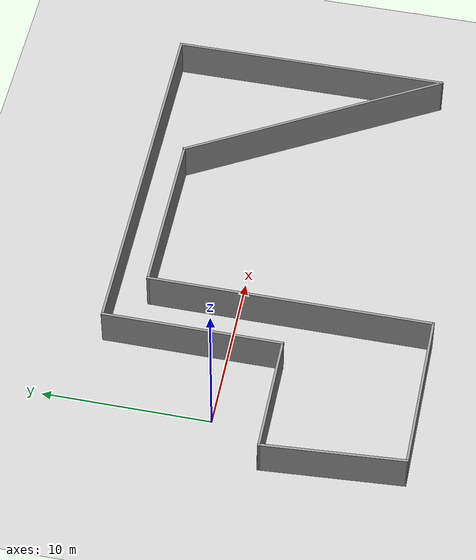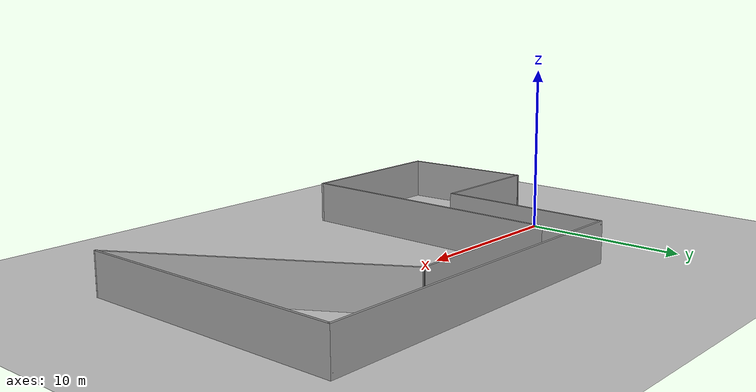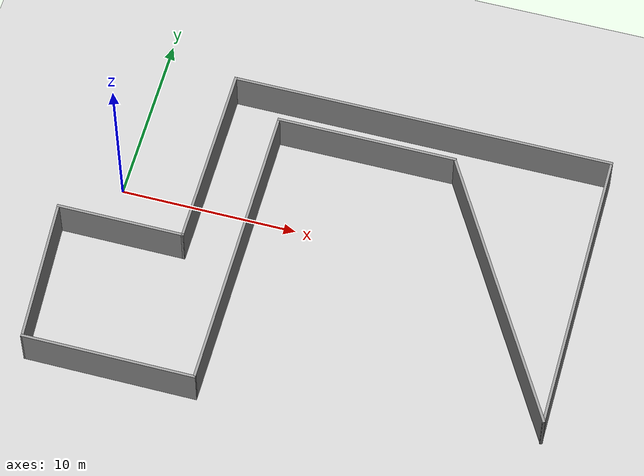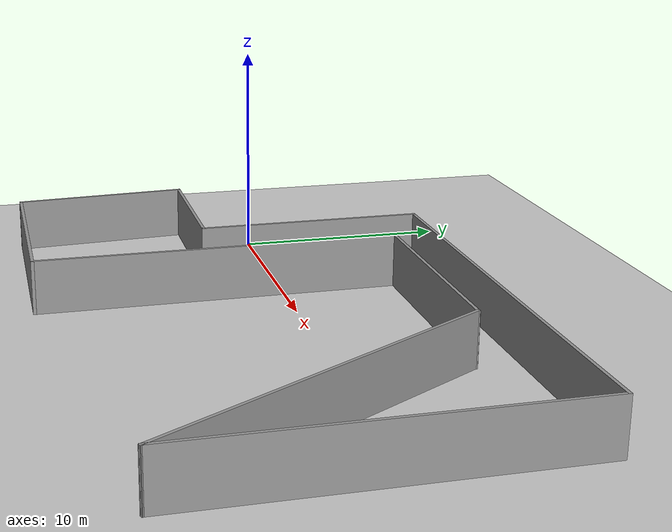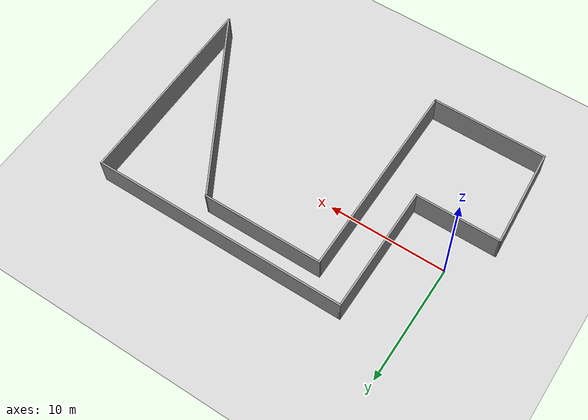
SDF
<sdf version="1.7">
 <world name="default">
  <light name="sun" type="directional">
   <pose>0 0 10 0 -0 0</pose>
   <diffuse>0.8 0.8 0.8 1</diffuse>
   <specular>0.2 0.2 0.2 1</specular>
   <attenuation>
    <range>1000</range>
    <constant>0.9</constant>
    <linear>0.01</linear>
    <quadratic>0.001</quadratic>
   </attenuation>
   <direction>-0.5 0.1 -0.9</direction>
   <spot><inner_angle>0</inner_angle><outer_angle>0</outer_angle><falloff>0</falloff></spot>
  </light>
  <model name="ground_plane">
   <static>1</static>
   <link name="link">
    <collision name="collision">
     <geometry><plane><normal>0 0 1</normal><size>100 100</size></plane></geometry>
     <surface>
      <contact><collide_bitmask>65535</collide_bitmask></contact>
      <friction><ode><mu>100</mu><mu2>50</mu2></ode></friction>
     </surface>
    </collision>
    <visual name="visual">
     <cast_shadows>0</cast_shadows>
     <geometry><plane><normal>0 0 1</normal><size>100 100</size></plane></geometry>
     <material>
      <script><uri>file://media/materials/scripts/gazebo.material</uri><name>Gazebo/Grey</name></script>
     </material>
    </visual>
   </link>
  </model>
  <gravity>0 0 -9.8</gravity>
  <magnetic_field>6e-06 2.3e-05 -4.2e-05</magnetic_field>
  <atmosphere type="adiabatic"/>
  <physics type="ode">
   <max_step_size>0.001</max_step_size>
   <real_time_factor>1</real_time_factor>
   <real_time_update_rate>1000</real_time_update_rate>
  </physics>
  <scene><ambient>0.4 0.4 0.4 1</ambient><background>0.7 0.7 0.7 1</background><shadows>1</shadows></scene>
  <audio><device>default</device></audio>
  <spherical_coordinates>
   <surface_model>EARTH_WGS84</surface_model>
   <latitude_deg>0</latitude_deg>
   <longitude_deg>0</longitude_deg>
   <elevation>0</elevation>
   <heading_deg>0</heading_deg>
  </spherical_coordinates>
  <model name="trying">
   <pose>11.7812 -2.04125 0 0 -0 0</pose>
   <link name="Wall_0">
    <collision name="Wall_0_Collision">
     <geometry><box><size>7.25 0.15 2.5</size></box></geometry>
     <pose>0 0 1.25 0 -0 0</pose>
    </collision>
    <visual name="Wall_0_Visual">
     <pose>0 0 1.25 0 -0 0</pose>
     <geometry><box><size>7.25 0.15 2.5</size></box></geometry>
     <material>
      <script><uri>file://media/materials/scripts/gazebo.material</uri><name>Gazebo/Grey</name></script>
      <ambient>1 1 1 1</ambient>
     </material>
     <meta><layer>0</layer></meta>
    </visual>
    <pose>-10.8112 -1.16875 0 0 -0 0</pose>
   </link>
   <link name="Wall_1">
    <collision name="Wall_1_Collision">
     <geometry><box><size>10.75 0.15 2.5</size></box></geometry>
     <pose>0 0 1.25 0 -0 0</pose>
    </collision>
    <visual name="Wall_1_Visual">
     <pose>0 0 1.25 0 -0 0</pose>
     <geometry><box><size>10.75 0.15 2.5</size></box></geometry>
     <material>
      <script><uri>file://media/materials/scripts/gazebo.material</uri><name>Gazebo/Grey</name></script>
      <ambient>1 1 1 1</ambient>
     </material>
     <meta><layer>0</layer></meta>
    </visual>
    <pose>-7.26121 4.13125 0 0 -0 1.5708</pose>
   </link>
   <link name="Wall_2">
    <collision name="Wall_2_Collision">
     <geometry><box><size>21.75 0.15 2.5</size></box></geometry>
     <pose>0 0 1.25 0 -0 0</pose>
    </collision>
    <visual name="Wall_2_Visual">
     <pose>0 0 1.25 0 -0 0</pose>
     <geometry><box><size>21.75 0.15 2.5</size></box></geometry>
     <material>
      <script><uri>file://media/materials/scripts/gazebo.material</uri><name>Gazebo/Grey</name></script>
      <ambient>1 1 1 1</ambient>
     </material>
     <meta><layer>0</layer></meta>
    </visual>
    <pose>3.53879 9.43125 0 0 -0 0</pose>
   </link>
   <link name="Wall_3">
    <collision name="Wall_3_Collision">
     <geometry><box><size>16.75 0.15 2.5</size></box></geometry>
     <pose>0 0 1.25 0 -0 0</pose>
    </collision>
    <visual name="Wall_3_Visual">
     <pose>0 0 1.25 0 -0 0</pose>
     <geometry><box><size>16.75 0.15 2.5</size></box></geometry>
     <material>
      <script><uri>file://media/materials/scripts/gazebo.material</uri><name>Gazebo/Grey</name></script>
      <ambient>1 1 1 1</ambient>
     </material>
     <meta><layer>0</layer></meta>
    </visual>
    <pose>14.3388 1.13125 0 0 -0 -1.5708</pose>
   </link>
   <link name="Wall_4">
    <collision name="Wall_4_Collision">
     <geometry><box><size>17 0.15 2.5</size></box></geometry>
     <pose>0 0 1.25 0 -0 0</pose>
    </collision>
    <visual name="Wall_4_Visual">
     <pose>0 0 1.25 0 -0 0</pose>
     <geometry><box><size>17 0.15 2.5</size></box></geometry>
     <material>
      <script><uri>file://media/materials/scripts/gazebo.material</uri><name>Gazebo/Grey</name></script>
      <ambient>1 1 1 1</ambient>
     </material>
     <meta><layer>0</layer></meta>
    </visual>
    <pose>10.1263 0.127514 0 0 -0 2.0944</pose>
   </link>
   <link name="Wall_5">
    <collision name="Wall_5_Collision">
     <geometry><box><size>10.25 0.15 2.5</size></box></geometry>
     <pose>0 0 1.25 0 -0 0</pose>
    </collision>
    <visual name="Wall_5_Visual">
     <pose>0 0 1.25 0 -0 0</pose>
     <geometry><box><size>10.25 0.15 2.5</size></box></geometry>
     <material>
      <script><uri>file://media/materials/scripts/gazebo.material</uri><name>Gazebo/Grey</name></script>
      <ambient>1 1 1 1</ambient>
     </material>
     <meta><layer>0</layer></meta>
    </visual>
    <pose>0.86379 7.42378 0 0 -0 3.14159</pose>
   </link>
   <link name="Wall_6">
    <collision name="Wall_6_Collision">
     <geometry><box><size>17 0.15 2.5</size></box></geometry>
     <pose>0 0 1.25 0 -0 0</pose>
    </collision>
    <visual name="Wall_6_Visual">
     <pose>0 0 1.25 0 -0 0</pose>
     <geometry><box><size>17 0.15 2.5</size></box></geometry>
     <material>
      <script><uri>file://media/materials/scripts/gazebo.material</uri><name>Gazebo/Grey</name></script>
      <ambient>1 1 1 1</ambient>
     </material>
     <meta><layer>0</layer></meta>
    </visual>
    <pose>-4.18621 -1.00122 0 0 -0 -1.5708</pose>
   </link>
   <link name="Wall_7">
    <collision name="Wall_7_Collision">
     <geometry><box><size>9.75 0.15 2.5</size></box></geometry>
     <pose>0 0 1.25 0 -0 0</pose>
    </collision>
    <visual name="Wall_7_Visual">
     <pose>0 0 1.25 0 -0 0</pose>
     <geometry><box><size>9.75 0.15 2.5</size></box></geometry>
     <material>
      <script><uri>file://media/materials/scripts/gazebo.material</uri><name>Gazebo/Grey</name></script>
      <ambient>1 1 1 1</ambient>
     </material>
     <meta><layer>0</layer></meta>
    </visual>
    <pose>-8.98621 -9.42622 0 0 -0 3.14159</pose>
   </link>
   <link name="Wall_8">
    <collision name="Wall_8_Collision">
     <geometry><box><size>8.42747 0.15 2.5</size></box></geometry>
     <pose>0 0 1.25 0 -0 0</pose>
    </collision>
    <visual name="Wall_8_Visual">
     <pose>0 0 1.25 0 -0 0</pose>
     <geometry><box><size>8.42747 0.15 2.5</size></box></geometry>
     <material>
      <script><uri>file://media/materials/scripts/gazebo.material</uri><name>Gazebo/Grey</name></script>
      <ambient>1 1 1 1</ambient>
     </material>
     <meta><layer>0</layer></meta>
    </visual>
    <pose>-14.0737 -5.29749 0 0 -0 1.64032</pose>
   </link>
   <static>1</static>
  </model>
 </world>
</sdf>
